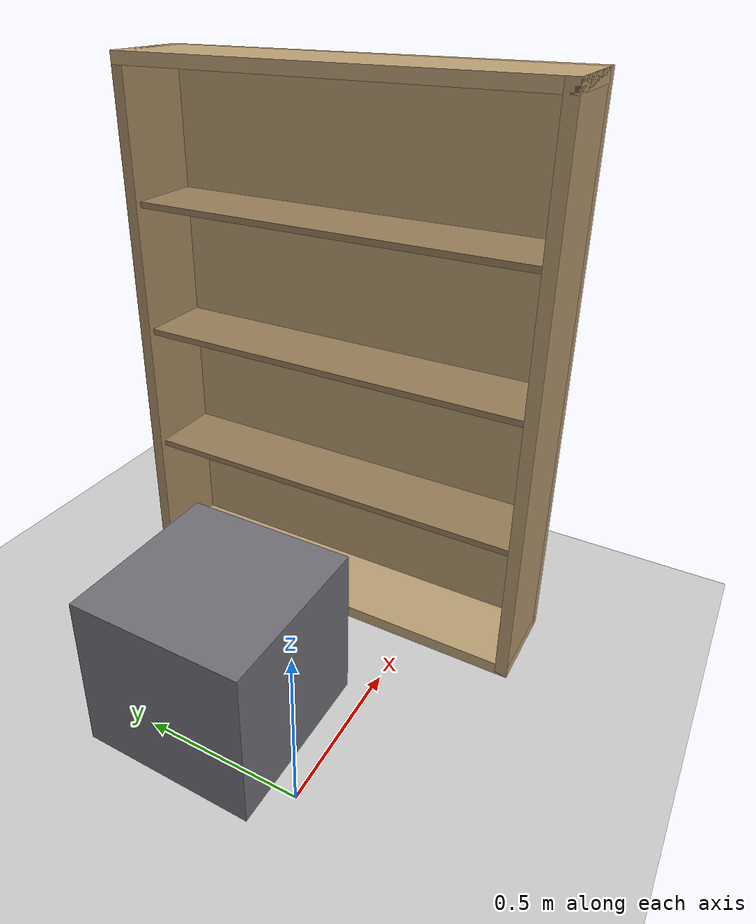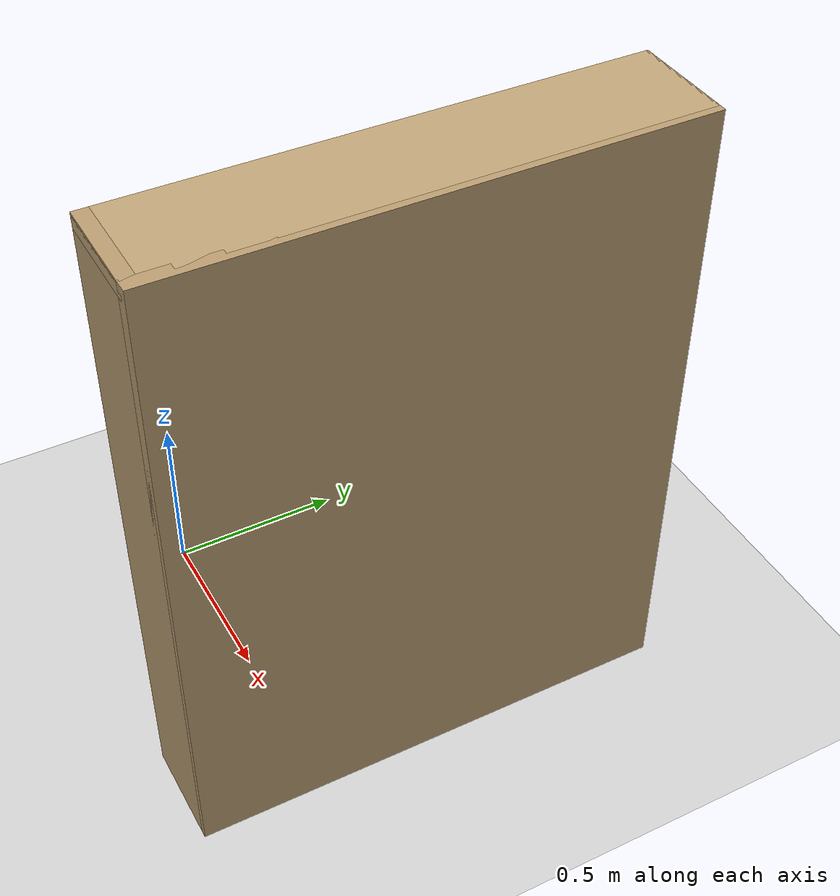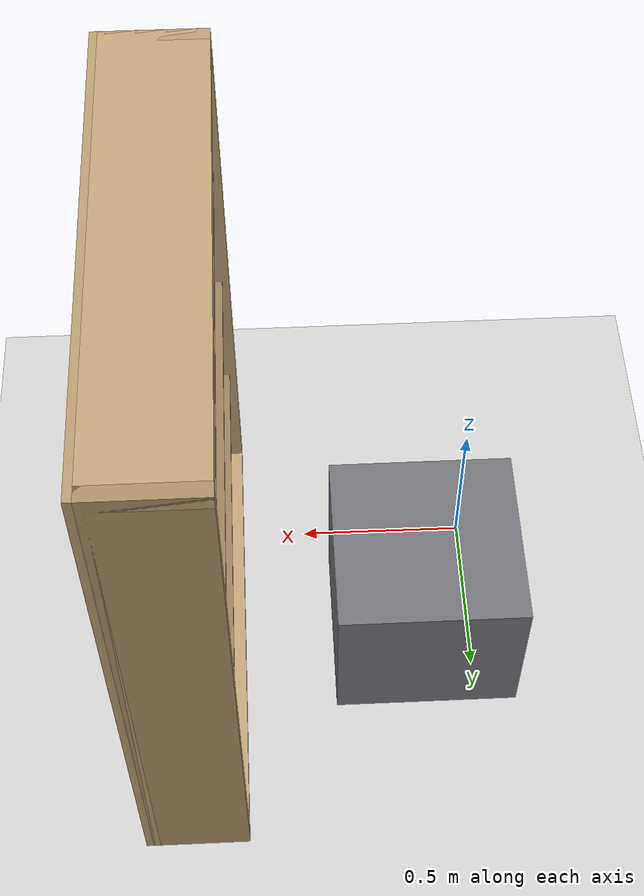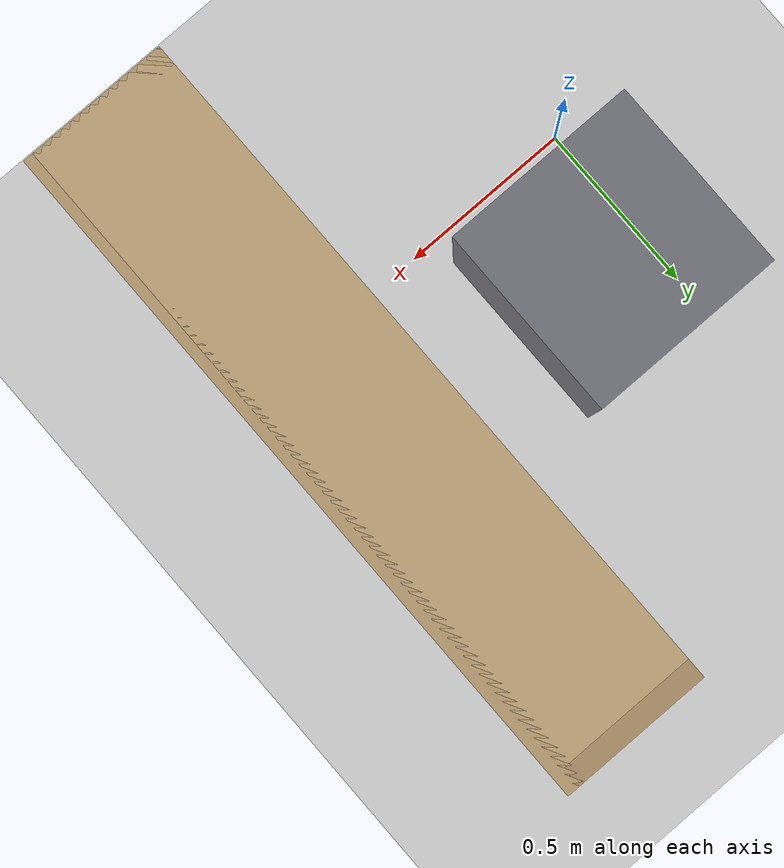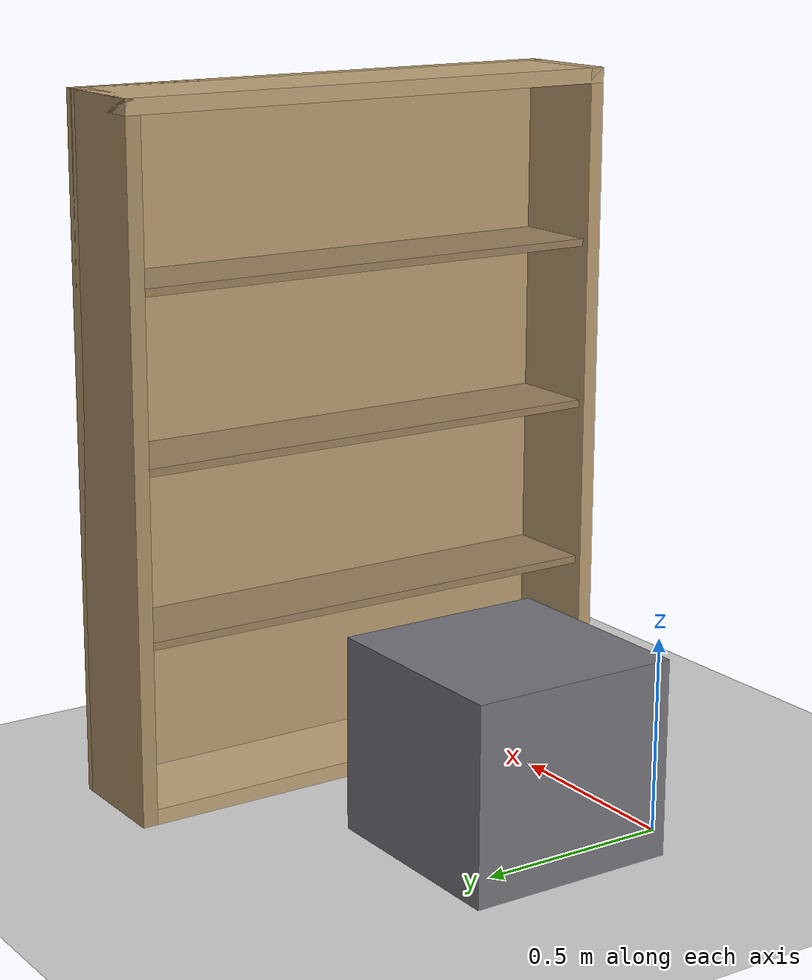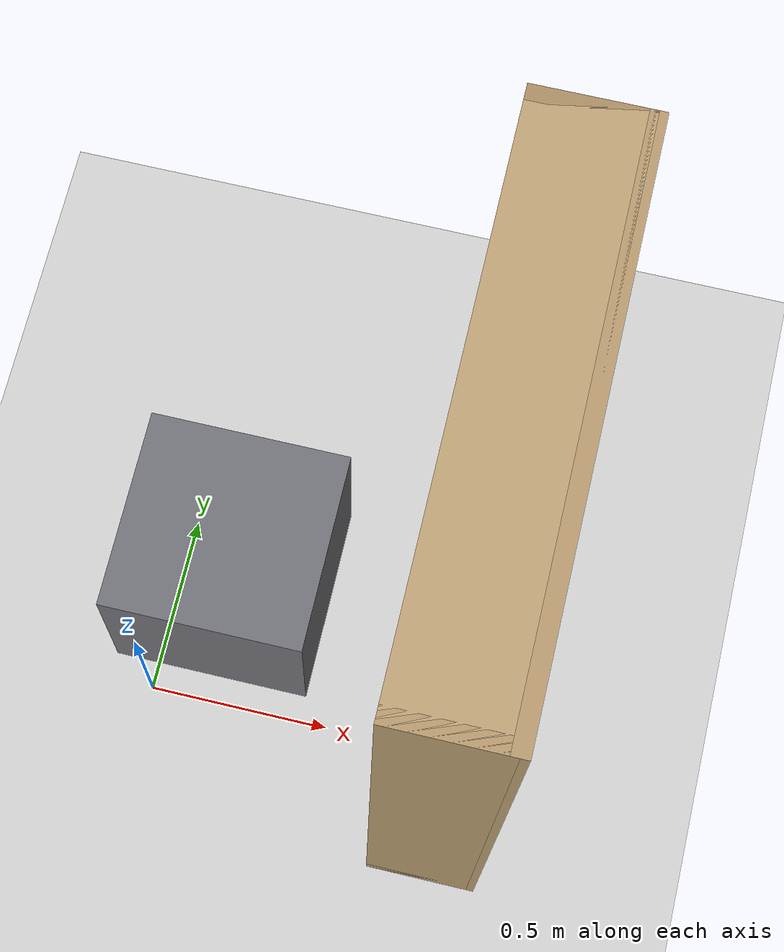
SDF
<?xml version="1.0" ?>
<sdf version="1.8">
  <world name="ur5_cabinet_world">
    <physics name="1ms" type="ignored">
      <max_step_size>0.001</max_step_size>
      <real_time_factor>1.0</real_time_factor>
    </physics>

    <plugin
      filename="gz-sim-physics-system"
      name="gz::sim::systems::Physics">
    </plugin>
    <plugin
      filename="ignition-gazebo-sensors-system"
      name="gz::sim::systems::Sensors">
      <render_engine>ogre2</render_engine>
    </plugin>
    <plugin
      filename="gz-sim-user-commands-system"
      name="gz::sim::systems::UserCommands">
    </plugin>
    <plugin
      filename="gz-sim-scene-broadcaster-system"
      name="gz::sim::systems::SceneBroadcaster">
    </plugin>

    <light name="sun" type="directional">
      <cast_shadows>true</cast_shadows>
      <pose>0 0 10 0 0 0</pose>
      <diffuse>0.85 0.85 0.85 1</diffuse>
      <specular>0.2 0.2 0.2 1</specular>
      <attenuation>
        <range>1000</range>
        <constant>0.9</constant>
        <linear>0.01</linear>
        <quadratic>0.001</quadratic>
      </attenuation>
      <direction>-0.35 0.15 -0.92</direction>
    </light>

    <model name="ground_plane">
      <static>true</static>
      <link name="link">
        <collision name="collision">
          <geometry>
            <plane>
              <normal>0 0 1</normal>
              <size>20 20</size>
            </plane>
          </geometry>
        </collision>
        <visual name="visual">
          <geometry>
            <plane>
              <normal>0 0 1</normal>
              <size>20 20</size>
            </plane>
          </geometry>
          <material>
            <ambient>0.82 0.82 0.82 1</ambient>
            <diffuse>0.82 0.82 0.82 1</diffuse>
            <specular>0.25 0.25 0.25 1</specular>
          </material>
        </visual>
      </link>
    </model>

    <model name="robot_pedestal">
      <static>true</static>
      <pose>0.15 0.35 0.25 0 0 0</pose>
      <link name="pedestal_link">
        <collision name="pedestal_collision">
          <geometry>
            <box>
              <size>0.55 0.55 0.50</size>
            </box>
          </geometry>
        </collision>
        <visual name="pedestal_visual">
          <geometry>
            <box>
              <size>0.55 0.55 0.50</size>
            </box>
          </geometry>
          <material>
            <ambient>0.45 0.45 0.48 1</ambient>
            <diffuse>0.45 0.45 0.48 1</diffuse>
            <specular>0.15 0.15 0.18 1</specular>
          </material>
        </visual>
      </link>
    </model>

    <model name="empty_cabinet">
      <static>true</static>
      <pose>0 0 0 0 0 0</pose>
      <link name="cabinet_link">
        <visual name="back_panel_visual">
          <pose>0.98 0.35 0.90 0 0 0</pose>
          <geometry>
            <box>
              <size>0.04 1.40 1.80</size>
            </box>
          </geometry>
          <material>
            <ambient>0.72 0.61 0.44 1</ambient>
            <diffuse>0.72 0.61 0.44 1</diffuse>
          </material>
        </visual>
        <collision name="back_panel_collision">
          <pose>0.98 0.35 0.90 0 0 0</pose>
          <geometry>
            <box>
              <size>0.04 1.40 1.80</size>
            </box>
          </geometry>
        </collision>

        <visual name="left_panel_visual">
          <pose>0.84 -0.33 0.90 0 0 0</pose>
          <geometry>
            <box>
              <size>0.28 0.04 1.80</size>
            </box>
          </geometry>
          <material>
            <ambient>0.72 0.61 0.44 1</ambient>
            <diffuse>0.72 0.61 0.44 1</diffuse>
          </material>
        </visual>
        <collision name="left_panel_collision">
          <pose>0.84 -0.33 0.90 0 0 0</pose>
          <geometry>
            <box>
              <size>0.28 0.04 1.80</size>
            </box>
          </geometry>
        </collision>

        <visual name="right_panel_visual">
          <pose>0.84 1.03 0.90 0 0 0</pose>
          <geometry>
            <box>
              <size>0.28 0.04 1.80</size>
            </box>
          </geometry>
          <material>
            <ambient>0.67 0.56 0.40 1</ambient>
            <diffuse>0.67 0.56 0.40 1</diffuse>
          </material>
        </visual>
        <collision name="right_panel_collision">
          <pose>0.84 1.03 0.90 0 0 0</pose>
          <geometry>
            <box>
              <size>0.28 0.04 1.80</size>
            </box>
          </geometry>
        </collision>

        <visual name="top_panel_visual">
          <pose>0.84 0.35 1.78 0 0 0</pose>
          <geometry>
            <box>
              <size>0.28 1.40 0.04</size>
            </box>
          </geometry>
          <material>
            <ambient>0.75 0.64 0.47 1</ambient>
            <diffuse>0.75 0.64 0.47 1</diffuse>
          </material>
        </visual>
        <collision name="top_panel_collision">
          <pose>0.84 0.35 1.78 0 0 0</pose>
          <geometry>
            <box>
              <size>0.28 1.40 0.04</size>
            </box>
          </geometry>
        </collision>

        <visual name="bottom_panel_visual">
          <pose>0.84 0.35 0.02 0 0 0</pose>
          <geometry>
            <box>
              <size>0.28 1.40 0.04</size>
            </box>
          </geometry>
          <material>
            <ambient>0.75 0.64 0.47 1</ambient>
            <diffuse>0.75 0.64 0.47 1</diffuse>
          </material>
        </visual>
        <collision name="bottom_panel_collision">
          <pose>0.84 0.35 0.02 0 0 0</pose>
          <geometry>
            <box>
              <size>0.28 1.40 0.04</size>
            </box>
          </geometry>
        </collision>

        <visual name="shelf_visual_0">
          <pose>0.84 0.35 0.46 0 0 0</pose>
          <geometry>
            <box>
              <size>0.24 1.32 0.02</size>
            </box>
          </geometry>
          <material>
            <ambient>0.60 0.50 0.36 1</ambient>
            <diffuse>0.60 0.50 0.36 1</diffuse>
          </material>
        </visual>
        <collision name="shelf_collision_0">
          <pose>0.84 0.35 0.46 0 0 0</pose>
          <geometry>
            <box>
              <size>0.24 1.32 0.02</size>
            </box>
          </geometry>
        </collision>

        <visual name="shelf_visual_1">
          <pose>0.84 0.35 0.90 0 0 0</pose>
          <geometry>
            <box>
              <size>0.24 1.32 0.02</size>
            </box>
          </geometry>
          <material>
            <ambient>0.60 0.50 0.36 1</ambient>
            <diffuse>0.60 0.50 0.36 1</diffuse>
          </material>
        </visual>
        <collision name="shelf_collision_1">
          <pose>0.84 0.35 0.90 0 0 0</pose>
          <geometry>
            <box>
              <size>0.24 1.32 0.02</size>
            </box>
          </geometry>
        </collision>

        <visual name="shelf_visual_2">
          <pose>0.84 0.35 1.34 0 0 0</pose>
          <geometry>
            <box>
              <size>0.24 1.32 0.02</size>
            </box>
          </geometry>
          <material>
            <ambient>0.60 0.50 0.36 1</ambient>
            <diffuse>0.60 0.50 0.36 1</diffuse>
          </material>
        </visual>
        <collision name="shelf_collision_2">
          <pose>0.84 0.35 1.34 0 0 0</pose>
          <geometry>
            <box>
              <size>0.24 1.32 0.02</size>
            </box>
          </geometry>
        </collision>
      </link>
    </model>
  </world>
</sdf>
